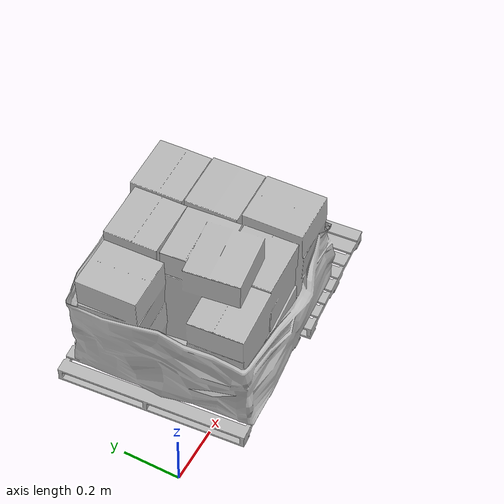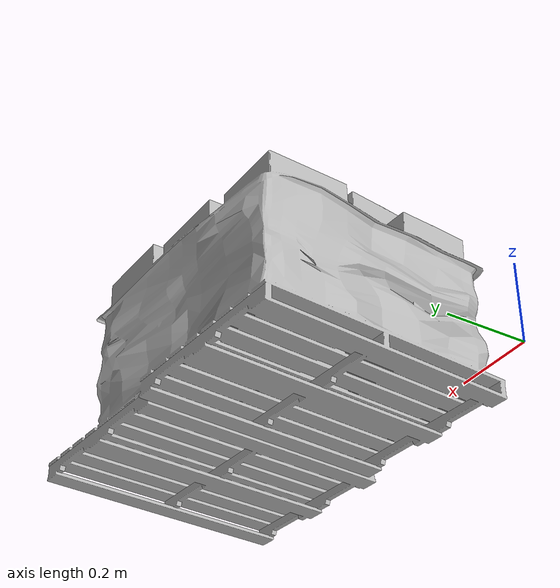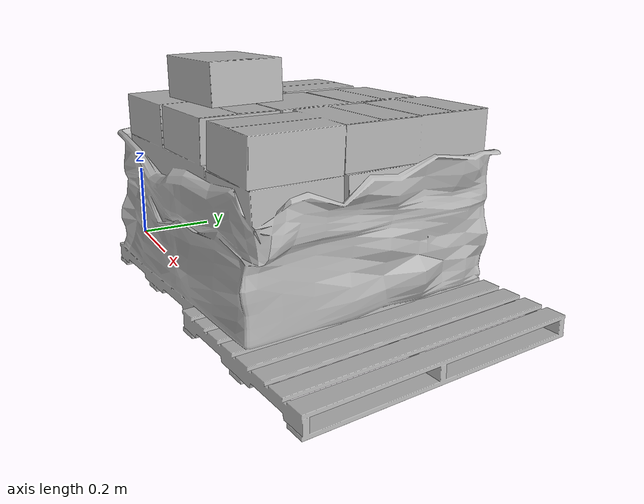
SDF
<?xml version='1.0'?>
<sdf version='1.6'>
  <model name='box_pallets_2'>
    <static>true</static>
    <link name="link">
      <pose>0 0 0 0 0 0</pose>
      <visual name="visual">
            <geometry>
                <mesh>
                  <scale>0.005 0.005 0.005</scale>
                  <uri>model://box_pallets_2/meshes/box_pallet.dae</uri>
                </mesh>
            </geometry>
        </visual>
      <collision name="collision">
        <pose>0 0 0 0 0 0</pose>
        <geometry>
          <mesh>
            <scale>0.005 0.005 0.005</scale>
            <uri>model://box_pallets_2/meshes/box_pallet.dae</uri>
          </mesh>
        </geometry>
      </collision>
    </link>
  </model>
</sdf>
